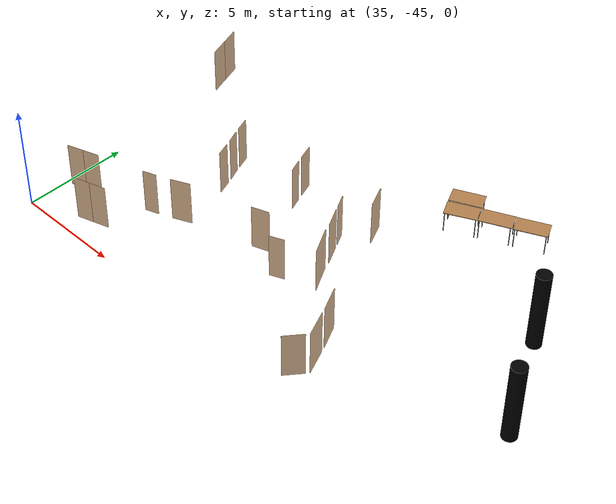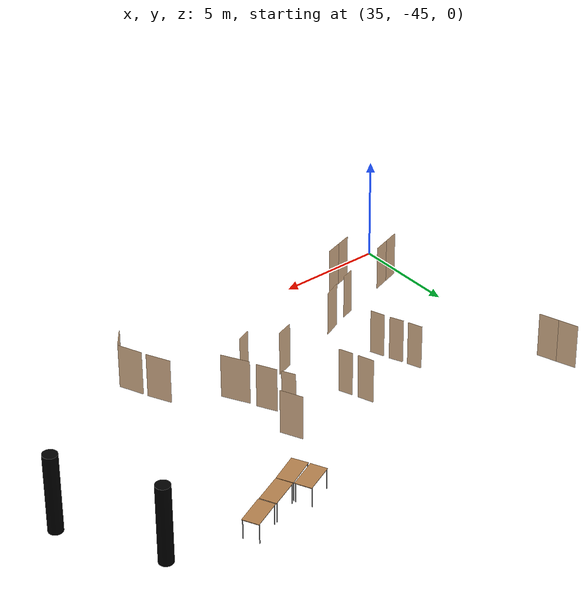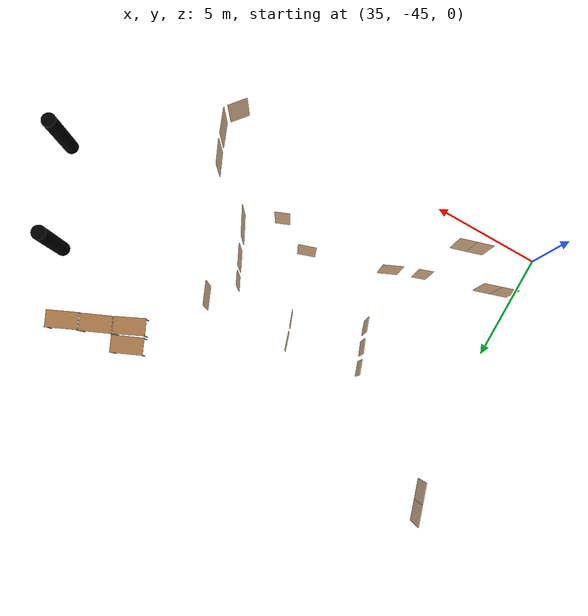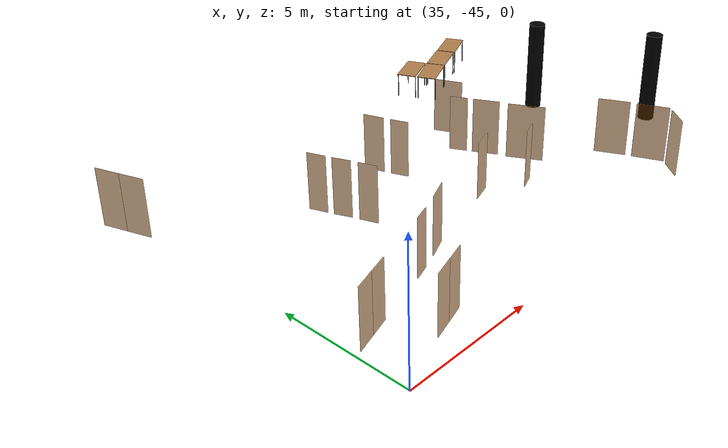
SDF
<sdf version="1.7">
 <world name="world">
  <model name="OpenRobotics/Table_3">
   <static>1</static>
   <link name="link">
    <collision name="surface">
     <pose>0 0 1 0 -0 0</pose>
     <geometry><box><size>1.5 0.8 0.03</size></box></geometry>
     <surface><friction><ode><mu>0.6</mu><mu2>0.6</mu2></ode></friction></surface>
    </collision>
    <visual name="visual1">
     <pose>0 0 1 0 -0 0</pose>
     <geometry><box><size>1.5 0.8 0.03</size></box></geometry>
     <material>
      <script><uri>file://media/materials/scripts/gazebo.material</uri><name>Gazebo/Wood</name></script>
     </material>
    </visual>
    <collision name="front_left_leg_c">
     <pose>0.68 0.38 0.5 0 -0 0</pose>
     <geometry><cylinder><radius>0.02</radius><length>1</length></cylinder></geometry>
    </collision>
    <visual name="front_left_leg">
     <pose>0.68 0.38 0.5 0 -0 0</pose>
     <geometry><cylinder><radius>0.02</radius><length>1</length></cylinder></geometry>
     <material>
      <script><uri>file://media/materials/scripts/gazebo.material</uri><name>Gazebo/Grey</name></script>
     </material>
    </visual>
    <collision name="front_right_leg_c">
     <pose>0.68 -0.38 0.5 0 -0 0</pose>
     <geometry><cylinder><radius>0.02</radius><length>1</length></cylinder></geometry>
    </collision>
    <visual name="front_right_leg">
     <pose>0.68 -0.38 0.5 0 -0 0</pose>
     <geometry><cylinder><radius>0.02</radius><length>1</length></cylinder></geometry>
     <material>
      <script><uri>file://media/materials/scripts/gazebo.material</uri><name>Gazebo/Grey</name></script>
     </material>
    </visual>
    <collision name="back_right_leg_c">
     <pose>-0.68 -0.38 0.5 0 -0 0</pose>
     <geometry><cylinder><radius>0.02</radius><length>1</length></cylinder></geometry>
    </collision>
    <visual name="back_right_leg">
     <pose>-0.68 -0.38 0.5 0 -0 0</pose>
     <geometry><cylinder><radius>0.02</radius><length>1</length></cylinder></geometry>
     <material>
      <script><uri>file://media/materials/scripts/gazebo.material</uri><name>Gazebo/Grey</name></script>
     </material>
    </visual>
    <collision name="back_left_leg_c">
     <pose>-0.68 0.38 0.5 0 -0 0</pose>
     <geometry><cylinder><radius>0.02</radius><length>1</length></cylinder></geometry>
    </collision>
    <visual name="back_left_leg">
     <pose>-0.68 0.38 0.5 0 -0 0</pose>
     <geometry><cylinder><radius>0.02</radius><length>1</length></cylinder></geometry>
     <material>
      <script><uri>file://media/materials/scripts/gazebo.material</uri><name>Gazebo/Grey</name></script>
     </material>
    </visual>
   </link>
   <pose>49.1187 -32.1514 0 0 -0 0.4303</pose>
  </model>
  <model name="OpenRobotics/Table_6">
   <static>1</static>
   <link name="link">
    <collision name="surface">
     <pose>0 0 1 0 -0 0</pose>
     <geometry><box><size>1.5 0.8 0.03</size></box></geometry>
     <surface><friction><ode><mu>0.6</mu><mu2>0.6</mu2></ode></friction></surface>
    </collision>
    <visual name="visual1">
     <pose>0 0 1 0 -0 0</pose>
     <geometry><box><size>1.5 0.8 0.03</size></box></geometry>
     <material>
      <script><uri>file://media/materials/scripts/gazebo.material</uri><name>Gazebo/Wood</name></script>
     </material>
    </visual>
    <collision name="front_left_leg_c">
     <pose>0.68 0.38 0.5 0 -0 0</pose>
     <geometry><cylinder><radius>0.02</radius><length>1</length></cylinder></geometry>
    </collision>
    <visual name="front_left_leg">
     <pose>0.68 0.38 0.5 0 -0 0</pose>
     <geometry><cylinder><radius>0.02</radius><length>1</length></cylinder></geometry>
     <material>
      <script><uri>file://media/materials/scripts/gazebo.material</uri><name>Gazebo/Grey</name></script>
     </material>
    </visual>
    <collision name="front_right_leg_c">
     <pose>0.68 -0.38 0.5 0 -0 0</pose>
     <geometry><cylinder><radius>0.02</radius><length>1</length></cylinder></geometry>
    </collision>
    <visual name="front_right_leg">
     <pose>0.68 -0.38 0.5 0 -0 0</pose>
     <geometry><cylinder><radius>0.02</radius><length>1</length></cylinder></geometry>
     <material>
      <script><uri>file://media/materials/scripts/gazebo.material</uri><name>Gazebo/Grey</name></script>
     </material>
    </visual>
    <collision name="back_right_leg_c">
     <pose>-0.68 -0.38 0.5 0 -0 0</pose>
     <geometry><cylinder><radius>0.02</radius><length>1</length></cylinder></geometry>
    </collision>
    <visual name="back_right_leg">
     <pose>-0.68 -0.38 0.5 0 -0 0</pose>
     <geometry><cylinder><radius>0.02</radius><length>1</length></cylinder></geometry>
     <material>
      <script><uri>file://media/materials/scripts/gazebo.material</uri><name>Gazebo/Grey</name></script>
     </material>
    </visual>
    <collision name="back_left_leg_c">
     <pose>-0.68 0.38 0.5 0 -0 0</pose>
     <geometry><cylinder><radius>0.02</radius><length>1</length></cylinder></geometry>
    </collision>
    <visual name="back_left_leg">
     <pose>-0.68 0.38 0.5 0 -0 0</pose>
     <geometry><cylinder><radius>0.02</radius><length>1</length></cylinder></geometry>
     <material>
      <script><uri>file://media/materials/scripts/gazebo.material</uri><name>Gazebo/Grey</name></script>
     </material>
    </visual>
   </link>
   <pose>52.2667 -31.6485 0 0 -0 0.4389</pose>
  </model>
  <model name="OpenRobotics/Table_7">
   <static>1</static>
   <link name="link">
    <collision name="surface">
     <pose>0 0 1 0 -0 0</pose>
     <geometry><box><size>1.5 0.8 0.03</size></box></geometry>
     <surface><friction><ode><mu>0.6</mu><mu2>0.6</mu2></ode></friction></surface>
    </collision>
    <visual name="visual1">
     <pose>0 0 1 0 -0 0</pose>
     <geometry><box><size>1.5 0.8 0.03</size></box></geometry>
     <material>
      <script><uri>file://media/materials/scripts/gazebo.material</uri><name>Gazebo/Wood</name></script>
     </material>
    </visual>
    <collision name="front_left_leg_c">
     <pose>0.68 0.38 0.5 0 -0 0</pose>
     <geometry><cylinder><radius>0.02</radius><length>1</length></cylinder></geometry>
    </collision>
    <visual name="front_left_leg">
     <pose>0.68 0.38 0.5 0 -0 0</pose>
     <geometry><cylinder><radius>0.02</radius><length>1</length></cylinder></geometry>
     <material>
      <script><uri>file://media/materials/scripts/gazebo.material</uri><name>Gazebo/Grey</name></script>
     </material>
    </visual>
    <collision name="front_right_leg_c">
     <pose>0.68 -0.38 0.5 0 -0 0</pose>
     <geometry><cylinder><radius>0.02</radius><length>1</length></cylinder></geometry>
    </collision>
    <visual name="front_right_leg">
     <pose>0.68 -0.38 0.5 0 -0 0</pose>
     <geometry><cylinder><radius>0.02</radius><length>1</length></cylinder></geometry>
     <material>
      <script><uri>file://media/materials/scripts/gazebo.material</uri><name>Gazebo/Grey</name></script>
     </material>
    </visual>
    <collision name="back_right_leg_c">
     <pose>-0.68 -0.38 0.5 0 -0 0</pose>
     <geometry><cylinder><radius>0.02</radius><length>1</length></cylinder></geometry>
    </collision>
    <visual name="back_right_leg">
     <pose>-0.68 -0.38 0.5 0 -0 0</pose>
     <geometry><cylinder><radius>0.02</radius><length>1</length></cylinder></geometry>
     <material>
      <script><uri>file://media/materials/scripts/gazebo.material</uri><name>Gazebo/Grey</name></script>
     </material>
    </visual>
    <collision name="back_left_leg_c">
     <pose>-0.68 0.38 0.5 0 -0 0</pose>
     <geometry><cylinder><radius>0.02</radius><length>1</length></cylinder></geometry>
    </collision>
    <visual name="back_left_leg">
     <pose>-0.68 0.38 0.5 0 -0 0</pose>
     <geometry><cylinder><radius>0.02</radius><length>1</length></cylinder></geometry>
     <material>
      <script><uri>file://media/materials/scripts/gazebo.material</uri><name>Gazebo/Grey</name></script>
     </material>
    </visual>
   </link>
   <pose>50.8587 -32.2821 0 0 -0 0.4288</pose>
  </model>
  <model name="OpenRobotics/Table_8">
   <static>1</static>
   <link name="link">
    <collision name="surface">
     <pose>0 0 1 0 -0 0</pose>
     <geometry><box><size>1.5 0.8 0.03</size></box></geometry>
     <surface><friction><ode><mu>0.6</mu><mu2>0.6</mu2></ode></friction></surface>
    </collision>
    <visual name="visual1">
     <pose>0 0 1 0 -0 0</pose>
     <geometry><box><size>1.5 0.8 0.03</size></box></geometry>
     <material>
      <script><uri>file://media/materials/scripts/gazebo.material</uri><name>Gazebo/Wood</name></script>
     </material>
    </visual>
    <collision name="front_left_leg_c">
     <pose>0.68 0.38 0.5 0 -0 0</pose>
     <geometry><cylinder><radius>0.02</radius><length>1</length></cylinder></geometry>
    </collision>
    <visual name="front_left_leg">
     <pose>0.68 0.38 0.5 0 -0 0</pose>
     <geometry><cylinder><radius>0.02</radius><length>1</length></cylinder></geometry>
     <material>
      <script><uri>file://media/materials/scripts/gazebo.material</uri><name>Gazebo/Grey</name></script>
     </material>
    </visual>
    <collision name="front_right_leg_c">
     <pose>0.68 -0.38 0.5 0 -0 0</pose>
     <geometry><cylinder><radius>0.02</radius><length>1</length></cylinder></geometry>
    </collision>
    <visual name="front_right_leg">
     <pose>0.68 -0.38 0.5 0 -0 0</pose>
     <geometry><cylinder><radius>0.02</radius><length>1</length></cylinder></geometry>
     <material>
      <script><uri>file://media/materials/scripts/gazebo.material</uri><name>Gazebo/Grey</name></script>
     </material>
    </visual>
    <collision name="back_right_leg_c">
     <pose>-0.68 -0.38 0.5 0 -0 0</pose>
     <geometry><cylinder><radius>0.02</radius><length>1</length></cylinder></geometry>
    </collision>
    <visual name="back_right_leg">
     <pose>-0.68 -0.38 0.5 0 -0 0</pose>
     <geometry><cylinder><radius>0.02</radius><length>1</length></cylinder></geometry>
     <material>
      <script><uri>file://media/materials/scripts/gazebo.material</uri><name>Gazebo/Grey</name></script>
     </material>
    </visual>
    <collision name="back_left_leg_c">
     <pose>-0.68 0.38 0.5 0 -0 0</pose>
     <geometry><cylinder><radius>0.02</radius><length>1</length></cylinder></geometry>
    </collision>
    <visual name="back_left_leg">
     <pose>-0.68 0.38 0.5 0 -0 0</pose>
     <geometry><cylinder><radius>0.02</radius><length>1</length></cylinder></geometry>
     <material>
      <script><uri>file://media/materials/scripts/gazebo.material</uri><name>Gazebo/Grey</name></script>
     </material>
    </visual>
   </link>
   <pose>49.4808 -32.9359 0 0 -0 0.4547</pose>
  </model>
  <model name="D1">
   <pose>46.734 -38.1165 0 0 -0 -1.09898</pose>
   <link name="right">
    <pose>0 0 1.11 0 -0 0</pose>
    <visual name="right_visual">
     <geometry><box><size>0.995473 0.03 2.2</size></box></geometry>
     <material><ambient>0.5 0.25 0 0.6</ambient><diffuse>0.5 0.25 0 0.6</diffuse></material>
    </visual>
    <collision name="right_collision">
     <geometry><box><size>0.995473 0.03 2.2</size></box></geometry>
     <surface><contact><collide_bitmask>2</collide_bitmask></contact></surface>
    </collision>
    <inertial>
     <mass>50</mass>
     <inertia><ixx>20.1704</ixx><iyy>24.2957</iyy><izz>4.13277</izz><ixy>0</ixy><ixz>0</ixz><iyz>0</iyz></inertia>
    </inertial>
   </link>
   <joint name="right_joint" type="revolute">
    <parent>world</parent>
    <child>right</child>
    <axis>
     <xyz>0 0 1</xyz>
     <limit><lower>0</lower><upper>1.57</upper></limit>
     <dynamics><spring_reference>0</spring_reference><spring_stiffness>0</spring_stiffness></dynamics>
    </axis>
    <pose>0.502736 0 0 0 -0 0</pose>
   </joint>
   <plugin name="door_D1" filename="libdoor.so">
    <v_max_door>0.5</v_max_door>
    <a_max_door>0.3</a_max_door>
    <a_nom_door>0.15</a_nom_door>
    <dx_min_door>0.01</dx_min_door>
    <f_max_door>500.0</f_max_door>
    <door name="D1" type="SwingDoor" left_joint_name="empty_joint" right_joint_name="right_joint"/>
   </plugin>
  </model>
  <model name="D2">
   <pose>40.5795 -41.0884 0 0 0 -2.71335</pose>
   <link name="right">
    <pose>0 0 1.11 0 -0 0</pose>
    <visual name="right_visual">
     <geometry><box><size>0.922305 0.03 2.2</size></box></geometry>
     <material><ambient>0.5 0.25 0 0.6</ambient><diffuse>0.5 0.25 0 0.6</diffuse></material>
    </visual>
    <collision name="right_collision">
     <geometry><box><size>0.922305 0.03 2.2</size></box></geometry>
     <surface><contact><collide_bitmask>2</collide_bitmask></contact></surface>
    </collision>
    <inertial>
     <mass>50</mass>
     <inertia><ixx>20.1704</ixx><iyy>23.711</iyy><izz>3.54811</izz><ixy>0</ixy><ixz>0</ixz><iyz>0</iyz></inertia>
    </inertial>
   </link>
   <joint name="right_joint" type="revolute">
    <parent>world</parent>
    <child>right</child>
    <axis>
     <xyz>0 0 1</xyz>
     <limit><lower>0</lower><upper>1.57</upper></limit>
     <dynamics><spring_reference>0</spring_reference><spring_stiffness>0</spring_stiffness></dynamics>
    </axis>
    <pose>0.466153 0 0 0 -0 0</pose>
   </joint>
   <plugin name="door_D2" filename="libdoor.so">
    <v_max_door>0.5</v_max_door>
    <a_max_door>0.3</a_max_door>
    <a_nom_door>0.15</a_nom_door>
    <dx_min_door>0.01</dx_min_door>
    <f_max_door>500.0</f_max_door>
    <door name="D2" type="SwingDoor" left_joint_name="empty_joint" right_joint_name="right_joint"/>
   </plugin>
  </model>
  <model name="D3">
   <pose>44.2806 -39.9356 -0 0 0 -2.80852</pose>
   <link name="right">
    <pose>0 0 1.11 0 -0 0</pose>
    <visual name="right_visual">
     <geometry><box><size>0.838853 0.03 2.2</size></box></geometry>
     <material><ambient>0.5 0.25 0 0.6</ambient><diffuse>0.5 0.25 0 0.6</diffuse></material>
    </visual>
    <collision name="right_collision">
     <geometry><box><size>0.838853 0.03 2.2</size></box></geometry>
     <surface><contact><collide_bitmask>2</collide_bitmask></contact></surface>
    </collision>
    <inertial>
     <mass>50</mass>
     <inertia><ixx>20.1704</ixx><iyy>23.0986</iyy><izz>2.93572</izz><ixy>0</ixy><ixz>0</ixz><iyz>0</iyz></inertia>
    </inertial>
   </link>
   <joint name="right_joint" type="revolute">
    <parent>world</parent>
    <child>right</child>
    <axis>
     <xyz>0 0 1</xyz>
     <limit><lower>0</lower><upper>1.57</upper></limit>
     <dynamics><spring_reference>0</spring_reference><spring_stiffness>0</spring_stiffness></dynamics>
    </axis>
    <pose>0.424426 0 0 0 -0 0</pose>
   </joint>
   <plugin name="door_D3" filename="libdoor.so">
    <v_max_door>0.5</v_max_door>
    <a_max_door>0.3</a_max_door>
    <a_nom_door>0.15</a_nom_door>
    <dx_min_door>0.01</dx_min_door>
    <f_max_door>500.0</f_max_door>
    <door name="D3" type="SwingDoor" left_joint_name="empty_joint" right_joint_name="right_joint"/>
   </plugin>
  </model>
  <model name="D4">
   <pose>46.2677 -37.1758 -0 0 0 -1.0969</pose>
   <link name="right">
    <pose>0 0 1.11 0 -0 0</pose>
    <visual name="right_visual">
     <geometry><box><size>0.672919 0.03 2.2</size></box></geometry>
     <material><ambient>0.5 0.25 0 0.6</ambient><diffuse>0.5 0.25 0 0.6</diffuse></material>
    </visual>
    <collision name="right_collision">
     <geometry><box><size>0.672919 0.03 2.2</size></box></geometry>
     <surface><contact><collide_bitmask>2</collide_bitmask></contact></surface>
    </collision>
    <inertial>
     <mass>50</mass>
     <inertia><ixx>20.1704</ixx><iyy>22.0534</iyy><izz>1.8905</izz><ixy>0</ixy><ixz>0</ixz><iyz>0</iyz></inertia>
    </inertial>
   </link>
   <joint name="right_joint" type="revolute">
    <parent>world</parent>
    <child>right</child>
    <axis>
     <xyz>0 0 1</xyz>
     <limit><lower>0</lower><upper>1.57</upper></limit>
     <dynamics><spring_reference>0</spring_reference><spring_stiffness>0</spring_stiffness></dynamics>
    </axis>
    <pose>0.34146 0 0 0 -0 0</pose>
   </joint>
   <plugin name="door_D4" filename="libdoor.so">
    <v_max_door>0.5</v_max_door>
    <a_max_door>0.3</a_max_door>
    <a_nom_door>0.15</a_nom_door>
    <dx_min_door>0.01</dx_min_door>
    <f_max_door>500.0</f_max_door>
    <door name="D4" type="SwingDoor" left_joint_name="empty_joint" right_joint_name="right_joint"/>
   </plugin>
  </model>
  <model name="D5">
   <pose>47.1461 -35.8918 0 0 -0 -1.15391</pose>
   <link name="right">
    <pose>0 0 1.11 0 -0 0</pose>
    <visual name="right_visual">
     <geometry><box><size>1.10714 0.03 2.2</size></box></geometry>
     <material><ambient>0.5 0.25 0 0.6</ambient><diffuse>0.5 0.25 0 0.6</diffuse></material>
    </visual>
    <collision name="right_collision">
     <geometry><box><size>1.10714 0.03 2.2</size></box></geometry>
     <surface><contact><collide_bitmask>2</collide_bitmask></contact></surface>
    </collision>
    <inertial>
     <mass>50</mass>
     <inertia><ixx>20.1704</ixx><iyy>25.274</iyy><izz>5.11105</izz><ixy>0</ixy><ixz>0</ixz><iyz>0</iyz></inertia>
    </inertial>
   </link>
   <joint name="right_joint" type="revolute">
    <parent>world</parent>
    <child>right</child>
    <axis>
     <xyz>0 0 -1</xyz>
     <limit><lower>0</lower><upper>1.57</upper></limit>
     <dynamics><spring_reference>0</spring_reference><spring_stiffness>0</spring_stiffness></dynamics>
    </axis>
    <pose>0.558568 0 0 0 -0 0</pose>
   </joint>
   <plugin name="door_D5" filename="libdoor.so">
    <v_max_door>0.5</v_max_door>
    <a_max_door>0.3</a_max_door>
    <a_nom_door>0.15</a_nom_door>
    <dx_min_door>0.01</dx_min_door>
    <f_max_door>500.0</f_max_door>
    <door name="D5" type="SwingDoor" left_joint_name="empty_joint" right_joint_name="right_joint"/>
   </plugin>
  </model>
  <model name="D6">
   <pose>49.9364 -41.6614 -0 0 -0 -1.13197</pose>
   <link name="right">
    <pose>0 0 1.11 0 -0 0</pose>
    <visual name="right_visual">
     <geometry><box><size>1.18487 0.03 2.2</size></box></geometry>
     <material><ambient>0.5 0.25 0 0.6</ambient><diffuse>0.5 0.25 0 0.6</diffuse></material>
    </visual>
    <collision name="right_collision">
     <geometry><box><size>1.18487 0.03 2.2</size></box></geometry>
     <surface><contact><collide_bitmask>2</collide_bitmask></contact></surface>
    </collision>
    <inertial>
     <mass>50</mass>
     <inertia><ixx>20.1704</ixx><iyy>26.0163</iyy><izz>5.85339</izz><ixy>0</ixy><ixz>0</ixz><iyz>0</iyz></inertia>
    </inertial>
   </link>
   <joint name="right_joint" type="revolute">
    <parent>world</parent>
    <child>right</child>
    <axis>
     <xyz>0 0 -1</xyz>
     <limit><lower>0</lower><upper>1.57</upper></limit>
     <dynamics><spring_reference>0</spring_reference><spring_stiffness>0</spring_stiffness></dynamics>
    </axis>
    <pose>0.597435 0 0 0 -0 0</pose>
   </joint>
   <plugin name="door_D6" filename="libdoor.so">
    <v_max_door>0.5</v_max_door>
    <a_max_door>0.3</a_max_door>
    <a_nom_door>0.15</a_nom_door>
    <dx_min_door>0.01</dx_min_door>
    <f_max_door>500.0</f_max_door>
    <door name="D6" type="SwingDoor" left_joint_name="empty_joint" right_joint_name="right_joint"/>
   </plugin>
  </model>
  <model name="D7">
   <pose>50.4968 -42.9865 0 0 -0 -1.18211</pose>
   <link name="right">
    <pose>0 0 1.11 0 -0 0</pose>
    <visual name="right_visual">
     <geometry><box><size>1.21471 0.03 2.2</size></box></geometry>
     <material><ambient>0.5 0.25 0 0.6</ambient><diffuse>0.5 0.25 0 0.6</diffuse></material>
    </visual>
    <collision name="right_collision">
     <geometry><box><size>1.21471 0.03 2.2</size></box></geometry>
     <surface><contact><collide_bitmask>2</collide_bitmask></contact></surface>
    </collision>
    <inertial>
     <mass>50</mass>
     <inertia><ixx>20.1704</ixx><iyy>26.3147</iyy><izz>6.15175</izz><ixy>0</ixy><ixz>0</ixz><iyz>0</iyz></inertia>
    </inertial>
   </link>
   <joint name="right_joint" type="revolute">
    <parent>world</parent>
    <child>right</child>
    <axis>
     <xyz>0 0 1</xyz>
     <limit><lower>0</lower><upper>1.57</upper></limit>
     <dynamics><spring_reference>0</spring_reference><spring_stiffness>0</spring_stiffness></dynamics>
    </axis>
    <pose>0.612355 0 0 0 -0 0</pose>
   </joint>
   <plugin name="door_D7" filename="libdoor.so">
    <v_max_door>0.5</v_max_door>
    <a_max_door>0.3</a_max_door>
    <a_nom_door>0.15</a_nom_door>
    <dx_min_door>0.01</dx_min_door>
    <f_max_door>500.0</f_max_door>
    <door name="D7" type="SwingDoor" left_joint_name="empty_joint" right_joint_name="right_joint"/>
   </plugin>
  </model>
  <model name="D8">
   <pose>50.3156 -44.0611 0 0 -0 0.893687</pose>
   <link name="right">
    <pose>0 0 1.11 0 -0 0</pose>
    <visual name="right_visual">
     <geometry><box><size>0.954253 0.03 2.2</size></box></geometry>
     <material><ambient>0.5 0.25 0 0.6</ambient><diffuse>0.5 0.25 0 0.6</diffuse></material>
    </visual>
    <collision name="right_collision">
     <geometry><box><size>0.954253 0.03 2.2</size></box></geometry>
     <surface><contact><collide_bitmask>2</collide_bitmask></contact></surface>
    </collision>
    <inertial>
     <mass>50</mass>
     <inertia><ixx>20.1704</ixx><iyy>23.9608</iyy><izz>3.79791</izz><ixy>0</ixy><ixz>0</ixz><iyz>0</iyz></inertia>
    </inertial>
   </link>
   <joint name="right_joint" type="revolute">
    <parent>world</parent>
    <child>right</child>
    <axis>
     <xyz>0 0 1</xyz>
     <limit><lower>0</lower><upper>1.57</upper></limit>
     <dynamics><spring_reference>0</spring_reference><spring_stiffness>0</spring_stiffness></dynamics>
    </axis>
    <pose>0.482127 0 0 0 -0 0</pose>
   </joint>
   <plugin name="door_D8" filename="libdoor.so">
    <v_max_door>0.5</v_max_door>
    <a_max_door>0.3</a_max_door>
    <a_nom_door>0.15</a_nom_door>
    <dx_min_door>0.01</dx_min_door>
    <f_max_door>500.0</f_max_door>
    <door name="D8" type="SwingDoor" left_joint_name="empty_joint" right_joint_name="right_joint"/>
   </plugin>
  </model>
  <model name="D10">
   <pose>47.3834 -39.5003 -0 -0 -0 -1.07964</pose>
   <link name="right">
    <pose>0 0 1.11 0 -0 0</pose>
    <visual name="right_visual">
     <geometry><box><size>1.38727 0.03 2.2</size></box></geometry>
     <material><ambient>0.5 0.25 0 0.6</ambient><diffuse>0.5 0.25 0 0.6</diffuse></material>
    </visual>
    <collision name="right_collision">
     <geometry><box><size>1.38727 0.03 2.2</size></box></geometry>
     <surface><contact><collide_bitmask>2</collide_bitmask></contact></surface>
    </collision>
    <inertial>
     <mass>50</mass>
     <inertia><ixx>20.1704</ixx><iyy>28.1855</iyy><izz>8.02261</izz><ixy>0</ixy><ixz>0</ixz><iyz>0</iyz></inertia>
    </inertial>
   </link>
   <joint name="right_joint" type="revolute">
    <parent>world</parent>
    <child>right</child>
    <axis>
     <xyz>0 0 1</xyz>
     <limit><lower>0</lower><upper>1.57</upper></limit>
     <dynamics><spring_reference>0</spring_reference><spring_stiffness>0</spring_stiffness></dynamics>
    </axis>
    <pose>0.698637 0 0 0 -0 0</pose>
   </joint>
   <plugin name="door_D10" filename="libdoor.so">
    <v_max_door>0.5</v_max_door>
    <a_max_door>0.3</a_max_door>
    <a_nom_door>0.15</a_nom_door>
    <dx_min_door>0.01</dx_min_door>
    <f_max_door>500.0</f_max_door>
    <door name="D10" type="SwingDoor" left_joint_name="empty_joint" right_joint_name="right_joint"/>
   </plugin>
  </model>
  <model name="D11">
   <pose>45.9919 -40.6742 0 0 -0 0.393065</pose>
   <link name="right">
    <pose>0 0 1.11 0 -0 0</pose>
    <visual name="right_visual">
     <geometry><box><size>0.692377 0.03 2.2</size></box></geometry>
     <material><ambient>0.5 0.25 0 0.6</ambient><diffuse>0.5 0.25 0 0.6</diffuse></material>
    </visual>
    <collision name="right_collision">
     <geometry><box><size>0.692377 0.03 2.2</size></box></geometry>
     <surface><contact><collide_bitmask>2</collide_bitmask></contact></surface>
    </collision>
    <inertial>
     <mass>50</mass>
     <inertia><ixx>20.1704</ixx><iyy>22.1641</iyy><izz>2.00119</izz><ixy>0</ixy><ixz>0</ixz><iyz>0</iyz></inertia>
    </inertial>
   </link>
   <joint name="right_joint" type="revolute">
    <parent>world</parent>
    <child>right</child>
    <axis>
     <xyz>0 0 1</xyz>
     <limit><lower>0</lower><upper>1.57</upper></limit>
     <dynamics><spring_reference>0</spring_reference><spring_stiffness>0</spring_stiffness></dynamics>
    </axis>
    <pose>0.351189 0 0 0 -0 0</pose>
   </joint>
   <plugin name="door_D11" filename="libdoor.so">
    <v_max_door>0.5</v_max_door>
    <a_max_door>0.3</a_max_door>
    <a_nom_door>0.15</a_nom_door>
    <dx_min_door>0.01</dx_min_door>
    <f_max_door>500.0</f_max_door>
    <door name="D11" type="SwingDoor" left_joint_name="empty_joint" right_joint_name="right_joint"/>
   </plugin>
  </model>
  <model name="D20">
   <pose>40.2781 -38.2815 0 0 -0 -1.22522</pose>
   <link name="right">
    <pose>0 0 1.11 0 -0 0</pose>
    <visual name="right_visual">
     <geometry><box><size>0.695847 0.03 2.2</size></box></geometry>
     <material><ambient>0.5 0.25 0 0.6</ambient><diffuse>0.5 0.25 0 0.6</diffuse></material>
    </visual>
    <collision name="right_collision">
     <geometry><box><size>0.695847 0.03 2.2</size></box></geometry>
     <surface><contact><collide_bitmask>2</collide_bitmask></contact></surface>
    </collision>
    <inertial>
     <mass>50</mass>
     <inertia><ixx>20.1704</ixx><iyy>22.1842</iyy><izz>2.02126</izz><ixy>0</ixy><ixz>0</ixz><iyz>0</iyz></inertia>
    </inertial>
   </link>
   <joint name="right_joint" type="revolute">
    <parent>world</parent>
    <child>right</child>
    <axis>
     <xyz>0 0 1</xyz>
     <limit><lower>0</lower><upper>1.57</upper></limit>
     <dynamics><spring_reference>0</spring_reference><spring_stiffness>0</spring_stiffness></dynamics>
    </axis>
    <pose>0.352924 0 0 0 -0 0</pose>
   </joint>
   <plugin name="door_D20" filename="libdoor.so">
    <v_max_door>0.5</v_max_door>
    <a_max_door>0.3</a_max_door>
    <a_nom_door>0.15</a_nom_door>
    <dx_min_door>0.01</dx_min_door>
    <f_max_door>500.0</f_max_door>
    <door name="D20" type="SwingDoor" left_joint_name="empty_joint" right_joint_name="right_joint"/>
   </plugin>
  </model>
  <model name="D21">
   <pose>39.9399 -37.3749 0 0 0 -1.17372</pose>
   <link name="right">
    <pose>0 0 1.11 0 -0 0</pose>
    <visual name="right_visual">
     <geometry><box><size>0.679785 0.03 2.2</size></box></geometry>
     <material><ambient>0.5 0.25 0 0.6</ambient><diffuse>0.5 0.25 0 0.6</diffuse></material>
    </visual>
    <collision name="right_collision">
     <geometry><box><size>0.679785 0.03 2.2</size></box></geometry>
     <surface><contact><collide_bitmask>2</collide_bitmask></contact></surface>
    </collision>
    <inertial>
     <mass>50</mass>
     <inertia><ixx>20.1704</ixx><iyy>22.0921</iyy><izz>1.9292</izz><ixy>0</ixy><ixz>0</ixz><iyz>0</iyz></inertia>
    </inertial>
   </link>
   <joint name="right_joint" type="revolute">
    <parent>world</parent>
    <child>right</child>
    <axis>
     <xyz>0 0 1</xyz>
     <limit><lower>0</lower><upper>1.57</upper></limit>
     <dynamics><spring_reference>0</spring_reference><spring_stiffness>0</spring_stiffness></dynamics>
    </axis>
    <pose>0.344893 0 0 0 -0 0</pose>
   </joint>
   <plugin name="door_D21" filename="libdoor.so">
    <v_max_door>0.5</v_max_door>
    <a_max_door>0.3</a_max_door>
    <a_nom_door>0.15</a_nom_door>
    <dx_min_door>0.01</dx_min_door>
    <f_max_door>500.0</f_max_door>
    <door name="D21" type="SwingDoor" left_joint_name="empty_joint" right_joint_name="right_joint"/>
   </plugin>
  </model>
  <model name="D22">
   <pose>39.6095 -36.5068 0 0 -0 -1.22329</pose>
   <link name="right">
    <pose>0 0 1.11 0 -0 0</pose>
    <visual name="right_visual">
     <geometry><box><size>0.697065 0.03 2.2</size></box></geometry>
     <material><ambient>0.5 0.25 0 0.6</ambient><diffuse>0.5 0.25 0 0.6</diffuse></material>
    </visual>
    <collision name="right_collision">
     <geometry><box><size>0.697065 0.03 2.2</size></box></geometry>
     <surface><contact><collide_bitmask>2</collide_bitmask></contact></surface>
    </collision>
    <inertial>
     <mass>50</mass>
     <inertia><ixx>20.1704</ixx><iyy>22.1912</iyy><izz>2.02833</izz><ixy>0</ixy><ixz>0</ixz><iyz>0</iyz></inertia>
    </inertial>
   </link>
   <joint name="right_joint" type="revolute">
    <parent>world</parent>
    <child>right</child>
    <axis>
     <xyz>0 0 1</xyz>
     <limit><lower>0</lower><upper>1.57</upper></limit>
     <dynamics><spring_reference>0</spring_reference><spring_stiffness>0</spring_stiffness></dynamics>
    </axis>
    <pose>0.353532 0 0 0 -0 0</pose>
   </joint>
   <plugin name="door_D22" filename="libdoor.so">
    <v_max_door>0.5</v_max_door>
    <a_max_door>0.3</a_max_door>
    <a_nom_door>0.15</a_nom_door>
    <dx_min_door>0.01</dx_min_door>
    <f_max_door>500.0</f_max_door>
    <door name="D22" type="SwingDoor" left_joint_name="empty_joint" right_joint_name="right_joint"/>
   </plugin>
  </model>
  <model name="D23">
   <pose>43.3133 -36.8664 0 0 -0 -1.20842</pose>
   <link name="right">
    <pose>0 0 1.11 0 -0 0</pose>
    <visual name="right_visual">
     <geometry><box><size>0.675024 0.03 2.2</size></box></geometry>
     <material><ambient>0.5 0.25 0 0.6</ambient><diffuse>0.5 0.25 0 0.6</diffuse></material>
    </visual>
    <collision name="right_collision">
     <geometry><box><size>0.675024 0.03 2.2</size></box></geometry>
     <surface><contact><collide_bitmask>2</collide_bitmask></contact></surface>
    </collision>
    <inertial>
     <mass>50</mass>
     <inertia><ixx>20.1704</ixx><iyy>22.0652</iyy><izz>1.90232</izz><ixy>0</ixy><ixz>0</ixz><iyz>0</iyz></inertia>
    </inertial>
   </link>
   <joint name="right_joint" type="revolute">
    <parent>world</parent>
    <child>right</child>
    <axis>
     <xyz>0 0 1</xyz>
     <limit><lower>0</lower><upper>1.57</upper></limit>
     <dynamics><spring_reference>0</spring_reference><spring_stiffness>0</spring_stiffness></dynamics>
    </axis>
    <pose>0.342512 0 0 0 -0 0</pose>
   </joint>
   <plugin name="door_D23" filename="libdoor.so">
    <v_max_door>0.5</v_max_door>
    <a_max_door>0.3</a_max_door>
    <a_nom_door>0.15</a_nom_door>
    <dx_min_door>0.01</dx_min_door>
    <f_max_door>500.0</f_max_door>
    <door name="D23" type="SwingDoor" left_joint_name="empty_joint" right_joint_name="right_joint"/>
   </plugin>
  </model>
  <model name="D24">
   <pose>42.9771 -35.9117 0 0 0 -1.2416</pose>
   <link name="right">
    <pose>0 0 1.11 0 -0 0</pose>
    <visual name="right_visual">
     <geometry><box><size>0.780097 0.03 2.2</size></box></geometry>
     <material><ambient>0.5 0.25 0 0.6</ambient><diffuse>0.5 0.25 0 0.6</diffuse></material>
    </visual>
    <collision name="right_collision">
     <geometry><box><size>0.780097 0.03 2.2</size></box></geometry>
     <surface><contact><collide_bitmask>2</collide_bitmask></contact></surface>
    </collision>
    <inertial>
     <mass>50</mass>
     <inertia><ixx>20.1704</ixx><iyy>22.7023</iyy><izz>2.53938</izz><ixy>0</ixy><ixz>0</ixz><iyz>0</iyz></inertia>
    </inertial>
   </link>
   <joint name="right_joint" type="revolute">
    <parent>world</parent>
    <child>right</child>
    <axis>
     <xyz>0 0 1</xyz>
     <limit><lower>0</lower><upper>1.57</upper></limit>
     <dynamics><spring_reference>0</spring_reference><spring_stiffness>0</spring_stiffness></dynamics>
    </axis>
    <pose>0.395048 0 0 0 -0 0</pose>
   </joint>
   <plugin name="door_D24" filename="libdoor.so">
    <v_max_door>0.5</v_max_door>
    <a_max_door>0.3</a_max_door>
    <a_nom_door>0.15</a_nom_door>
    <dx_min_door>0.01</dx_min_door>
    <f_max_door>500.0</f_max_door>
    <door name="D24" type="SwingDoor" left_joint_name="empty_joint" right_joint_name="right_joint"/>
   </plugin>
  </model>
  <model name="D65">
   <pose>39.2163 -41.6357 0 0 0 -2.79951</pose>
   <link name="right">
    <pose>0 0 1.11 0 -0 0</pose>
    <visual name="right_visual">
     <geometry><box><size>0.647671 0.03 2.2</size></box></geometry>
     <material><ambient>0.5 0.25 0 0.6</ambient><diffuse>0.5 0.25 0 0.6</diffuse></material>
    </visual>
    <collision name="right_collision">
     <geometry><box><size>0.647671 0.03 2.2</size></box></geometry>
     <surface><contact><collide_bitmask>2</collide_bitmask></contact></surface>
    </collision>
    <inertial>
     <mass>50</mass>
     <inertia><ixx>20.1704</ixx><iyy>21.9145</iyy><izz>1.75158</izz><ixy>0</ixy><ixz>0</ixz><iyz>0</iyz></inertia>
    </inertial>
   </link>
   <joint name="right_joint" type="revolute">
    <parent>world</parent>
    <child>right</child>
    <axis>
     <xyz>0 0 1</xyz>
     <limit><lower>0</lower><upper>1.57</upper></limit>
     <dynamics><spring_reference>0</spring_reference><spring_stiffness>0</spring_stiffness></dynamics>
    </axis>
    <pose>0.328836 0 0 0 -0 0</pose>
   </joint>
   <plugin name="door_D65" filename="libdoor.so">
    <v_max_door>0.5</v_max_door>
    <a_max_door>0.3</a_max_door>
    <a_nom_door>0.15</a_nom_door>
    <dx_min_door>0.01</dx_min_door>
    <f_max_door>500.0</f_max_door>
    <door name="D65" type="SwingDoor" left_joint_name="empty_joint" right_joint_name="right_joint"/>
   </plugin>
  </model>
  <model name="DH1">
   <pose>36.0006 -42.6635 0 0 0 -2.824</pose>
   <link name="right">
    <pose>0.392621 0 1.11 0 -0 0</pose>
    <visual name="right_visual">
     <geometry><box><size>0.775242 0.03 2.2</size></box></geometry>
     <material><ambient>0.5 0.25 0 0.6</ambient><diffuse>0.5 0.25 0 0.6</diffuse></material>
    </visual>
    <collision name="right_collision">
     <geometry><box><size>0.775242 0.03 2.2</size></box></geometry>
     <surface><contact><collide_bitmask>2</collide_bitmask></contact></surface>
    </collision>
    <inertial>
     <mass>50</mass>
     <inertia><ixx>20.1704</ixx><iyy>22.6708</iyy><izz>2.50792</izz><ixy>0</ixy><ixz>0</ixz><iyz>0</iyz></inertia>
    </inertial>
   </link>
   <joint name="right_joint" type="revolute">
    <parent>world</parent>
    <child>right</child>
    <axis>
     <xyz>0 0 -1</xyz>
     <limit><lower>0</lower><upper>1.57</upper></limit>
     <dynamics><spring_reference>0</spring_reference><spring_stiffness>0</spring_stiffness></dynamics>
    </axis>
    <pose>0.392621 0 0 0 -0 0</pose>
   </joint>
   <link name="left">
    <pose>-0.392621 0 1.11 0 -0 0</pose>
    <visual name="left_visual">
     <geometry><box><size>0.775242 0.03 2.2</size></box></geometry>
     <material><ambient>0.5 0.25 0 0.6</ambient><diffuse>0.5 0.25 0 0.6</diffuse></material>
    </visual>
    <collision name="left_collision">
     <geometry><box><size>0.775242 0.03 2.2</size></box></geometry>
     <surface><contact><collide_bitmask>2</collide_bitmask></contact></surface>
    </collision>
    <inertial>
     <mass>50</mass>
     <inertia><ixx>20.1704</ixx><iyy>22.6708</iyy><izz>2.50792</izz><ixy>0</ixy><ixz>0</ixz><iyz>0</iyz></inertia>
    </inertial>
   </link>
   <joint name="left_joint" type="revolute">
    <parent>world</parent>
    <child>left</child>
    <axis>
     <xyz>0 0 -1</xyz>
     <limit><lower>-1.57</lower><upper>0</upper></limit>
     <dynamics><spring_reference>0</spring_reference><spring_stiffness>0</spring_stiffness></dynamics>
    </axis>
    <pose>-0.392621 0 0 0 -0 0</pose>
   </joint>
   <plugin name="door_DH1" filename="libdoor.so">
    <v_max_door>0.5</v_max_door>
    <a_max_door>0.3</a_max_door>
    <a_nom_door>0.15</a_nom_door>
    <dx_min_door>0.01</dx_min_door>
    <f_max_door>500.0</f_max_door>
    <door name="DH1" type="DoubleSwingDoor" left_joint_name="left_joint" right_joint_name="right_joint"/>
   </plugin>
  </model>
  <model name="DH2">
   <pose>34.4428 -32.7311 0 0 -0 1.89236</pose>
   <link name="right">
    <pose>0.478874 0 1.11 0 -0 0</pose>
    <visual name="right_visual">
     <geometry><box><size>0.947748 0.03 2.2</size></box></geometry>
     <material><ambient>0.5 0.25 0 0.6</ambient><diffuse>0.5 0.25 0 0.6</diffuse></material>
    </visual>
    <collision name="right_collision">
     <geometry><box><size>0.947748 0.03 2.2</size></box></geometry>
     <surface><contact><collide_bitmask>2</collide_bitmask></contact></surface>
    </collision>
    <inertial>
     <mass>50</mass>
     <inertia><ixx>20.1704</ixx><iyy>23.9093</iyy><izz>3.74636</izz><ixy>0</ixy><ixz>0</ixz><iyz>0</iyz></inertia>
    </inertial>
   </link>
   <joint name="right_joint" type="revolute">
    <parent>world</parent>
    <child>right</child>
    <axis>
     <xyz>0 0 -1</xyz>
     <limit><lower>0</lower><upper>1.57</upper></limit>
     <dynamics><spring_reference>0</spring_reference><spring_stiffness>0</spring_stiffness></dynamics>
    </axis>
    <pose>0.478874 0 0 0 -0 0</pose>
   </joint>
   <link name="left">
    <pose>-0.478874 0 1.11 0 -0 0</pose>
    <visual name="left_visual">
     <geometry><box><size>0.947748 0.03 2.2</size></box></geometry>
     <material><ambient>0.5 0.25 0 0.6</ambient><diffuse>0.5 0.25 0 0.6</diffuse></material>
    </visual>
    <collision name="left_collision">
     <geometry><box><size>0.947748 0.03 2.2</size></box></geometry>
     <surface><contact><collide_bitmask>2</collide_bitmask></contact></surface>
    </collision>
    <inertial>
     <mass>50</mass>
     <inertia><ixx>20.1704</ixx><iyy>23.9093</iyy><izz>3.74636</izz><ixy>0</ixy><ixz>0</ixz><iyz>0</iyz></inertia>
    </inertial>
   </link>
   <joint name="left_joint" type="revolute">
    <parent>world</parent>
    <child>left</child>
    <axis>
     <xyz>0 0 -1</xyz>
     <limit><lower>-1.57</lower><upper>0</upper></limit>
     <dynamics><spring_reference>0</spring_reference><spring_stiffness>0</spring_stiffness></dynamics>
    </axis>
    <pose>-0.478874 0 0 0 -0 0</pose>
   </joint>
   <plugin name="door_DH2" filename="libdoor.so">
    <v_max_door>0.5</v_max_door>
    <a_max_door>0.3</a_max_door>
    <a_nom_door>0.15</a_nom_door>
    <dx_min_door>0.01</dx_min_door>
    <f_max_door>500.0</f_max_door>
    <door name="DH2" type="DoubleSwingDoor" left_joint_name="left_joint" right_joint_name="right_joint"/>
   </plugin>
  </model>
  <model name="DH10">
   <pose>37.9013 -43.8735 -0 0 0 -2.83751</pose>
   <link name="right">
    <pose>0.387534 0 1.11 0 -0 0</pose>
    <visual name="right_visual">
     <geometry><box><size>0.765067 0.03 2.2</size></box></geometry>
     <material><ambient>0.5 0.25 0 0.6</ambient><diffuse>0.5 0.25 0 0.6</diffuse></material>
    </visual>
    <collision name="right_collision">
     <geometry><box><size>0.765067 0.03 2.2</size></box></geometry>
     <surface><contact><collide_bitmask>2</collide_bitmask></contact></surface>
    </collision>
    <inertial>
     <mass>50</mass>
     <inertia><ixx>20.1704</ixx><iyy>22.6055</iyy><izz>2.44262</izz><ixy>0</ixy><ixz>0</ixz><iyz>0</iyz></inertia>
    </inertial>
   </link>
   <joint name="right_joint" type="revolute">
    <parent>world</parent>
    <child>right</child>
    <axis>
     <xyz>0 0 -1</xyz>
     <limit><lower>0</lower><upper>1.57</upper></limit>
     <dynamics><spring_reference>0</spring_reference><spring_stiffness>0</spring_stiffness></dynamics>
    </axis>
    <pose>0.387534 0 0 0 -0 0</pose>
   </joint>
   <link name="left">
    <pose>-0.387534 0 1.11 0 -0 0</pose>
    <visual name="left_visual">
     <geometry><box><size>0.765067 0.03 2.2</size></box></geometry>
     <material><ambient>0.5 0.25 0 0.6</ambient><diffuse>0.5 0.25 0 0.6</diffuse></material>
    </visual>
    <collision name="left_collision">
     <geometry><box><size>0.765067 0.03 2.2</size></box></geometry>
     <surface><contact><collide_bitmask>2</collide_bitmask></contact></surface>
    </collision>
    <inertial>
     <mass>50</mass>
     <inertia><ixx>20.1704</ixx><iyy>22.6055</iyy><izz>2.44262</izz><ixy>0</ixy><ixz>0</ixz><iyz>0</iyz></inertia>
    </inertial>
   </link>
   <joint name="left_joint" type="revolute">
    <parent>world</parent>
    <child>left</child>
    <axis>
     <xyz>0 0 -1</xyz>
     <limit><lower>-1.57</lower><upper>0</upper></limit>
     <dynamics><spring_reference>0</spring_reference><spring_stiffness>0</spring_stiffness></dynamics>
    </axis>
    <pose>-0.387534 0 0 0 -0 0</pose>
   </joint>
   <plugin name="door_DH10" filename="libdoor.so">
    <v_max_door>0.5</v_max_door>
    <a_max_door>0.3</a_max_door>
    <a_nom_door>0.15</a_nom_door>
    <dx_min_door>0.01</dx_min_door>
    <f_max_door>500.0</f_max_door>
    <door name="DH10" type="DoubleSwingDoor" left_joint_name="left_joint" right_joint_name="right_joint"/>
   </plugin>
  </model>
  <model name="CylinderBlock_15">
   <link name="link">
    <inertial>
     <mass>1</mass>
     <inertia><ixx>1</ixx><ixy>0</ixy><ixz>0</ixz><iyy>1</iyy><iyz>0</iyz><izz>1</izz></inertia>
    </inertial>
    <visual name="visual">
     <geometry><cylinder><radius>0.35</radius><length>4.0</length></cylinder></geometry>
     <material>
      <shader type="pixel"><normal_map>__default__</normal_map></shader>
      <script><name>ModelPreview_1::link::visual_MATERIAL_</name><uri>__default__</uri></script>
      <ambient>0 0 0 1</ambient>
      <diffuse>0 0 0 1</diffuse>
      <specular>0 0 0 1</specular>
      <emissive>0 0 0 1</emissive>
     </material>
    </visual>
    <collision name="collision">
     <geometry><cylinder><radius>0.35</radius><length>4.0</length></cylinder></geometry>
     <surface>
      <friction>
       <ode><mu>1</mu><mu2>1</mu2><fdir1>0 0 0</fdir1><slip1>0</slip1><slip2>0</slip2></ode>
       <torsional>
        <coefficient>1</coefficient>
        <patch_radius>0</patch_radius>
        <surface_radius>0</surface_radius>
        <use_patch_radius>1</use_patch_radius>
        <ode><slip>0</slip></ode>
       </torsional>
      </friction>
      <bounce><restitution_coefficient>0</restitution_coefficient><threshold>1e+06</threshold></bounce>
      <contact>
       <collide_without_contact>0</collide_without_contact>
       <collide_without_contact_bitmask>1</collide_without_contact_bitmask>
       <collide_bitmask>1</collide_bitmask>
       <ode>
        <soft_cfm>0</soft_cfm>
        <soft_erp>0.2</soft_erp>
        <kp>1e+13</kp>
        <kd>1</kd>
        <max_vel>0.01</max_vel>
        <min_depth>0</min_depth>
       </ode>
       <bullet>
        <split_impulse>1</split_impulse>
        <split_impulse_penetration_threshold>-0.01</split_impulse_penetration_threshold>
        <soft_cfm>0</soft_cfm>
        <soft_erp>0.2</soft_erp>
        <kp>1e+13</kp>
        <kd>1</kd>
       </bullet>
      </contact>
     </surface>
    </collision>
   </link>
   <static>1</static>
   <pose>57.308 -39.0873 0 0 -0 0</pose>
  </model>
  <model name="CylinderBlock_16">
   <link name="link">
    <inertial>
     <mass>1</mass>
     <inertia><ixx>1</ixx><ixy>0</ixy><ixz>0</ixz><iyy>1</iyy><iyz>0</iyz><izz>1</izz></inertia>
    </inertial>
    <visual name="visual">
     <geometry><cylinder><radius>0.35</radius><length>4.0</length></cylinder></geometry>
     <material>
      <shader type="pixel"><normal_map>__default__</normal_map></shader>
      <script><name>ModelPreview_1::link::visual_MATERIAL_</name><uri>__default__</uri></script>
      <ambient>0 0 0 1</ambient>
      <diffuse>0 0 0 1</diffuse>
      <specular>0 0 0 1</specular>
      <emissive>0 0 0 1</emissive>
     </material>
    </visual>
    <collision name="collision">
     <geometry><cylinder><radius>0.35</radius><length>4.0</length></cylinder></geometry>
     <surface>
      <friction>
       <ode><mu>1</mu><mu2>1</mu2><fdir1>0 0 0</fdir1><slip1>0</slip1><slip2>0</slip2></ode>
       <torsional>
        <coefficient>1</coefficient>
        <patch_radius>0</patch_radius>
        <surface_radius>0</surface_radius>
        <use_patch_radius>1</use_patch_radius>
        <ode><slip>0</slip></ode>
       </torsional>
      </friction>
      <bounce><restitution_coefficient>0</restitution_coefficient><threshold>1e+06</threshold></bounce>
      <contact>
       <collide_without_contact>0</collide_without_contact>
       <collide_without_contact_bitmask>1</collide_without_contact_bitmask>
       <collide_bitmask>1</collide_bitmask>
       <ode>
        <soft_cfm>0</soft_cfm>
        <soft_erp>0.2</soft_erp>
        <kp>1e+13</kp>
        <kd>1</kd>
        <max_vel>0.01</max_vel>
        <min_depth>0</min_depth>
       </ode>
       <bullet>
        <split_impulse>1</split_impulse>
        <split_impulse_penetration_threshold>-0.01</split_impulse_penetration_threshold>
        <soft_cfm>0</soft_cfm>
        <soft_erp>0.2</soft_erp>
        <kp>1e+13</kp>
        <kd>1</kd>
       </bullet>
      </contact>
     </surface>
    </collision>
   </link>
   <static>1</static>
   <pose>54.9375 -34.4865 0 0 -0 0</pose>
  </model>
 </world>
</sdf>
